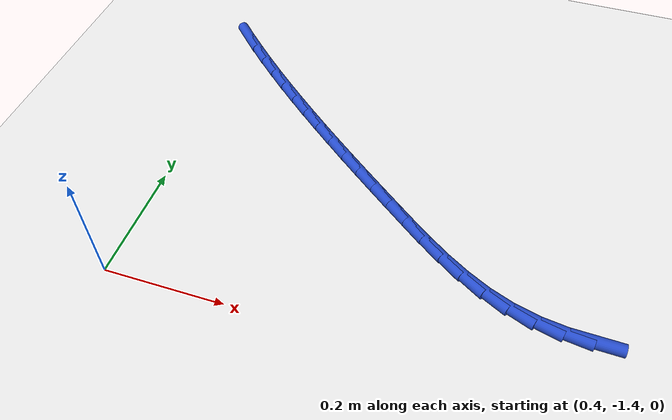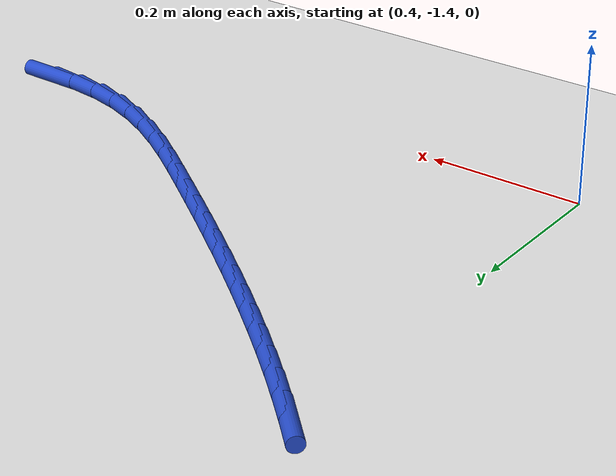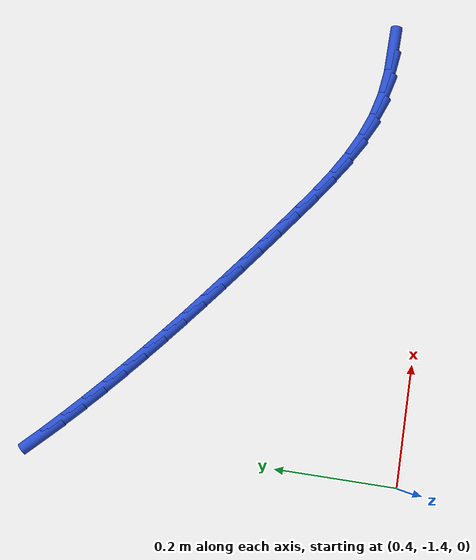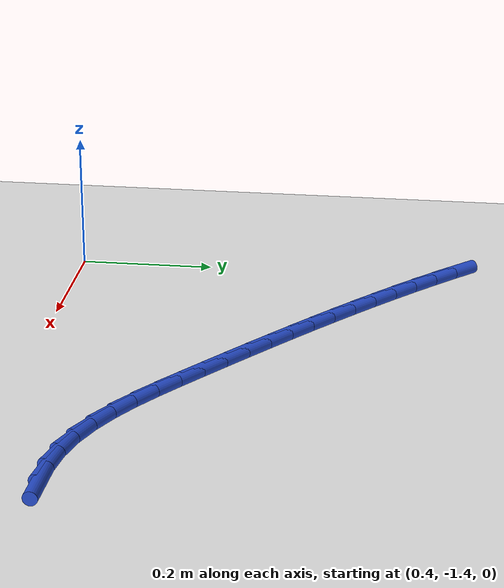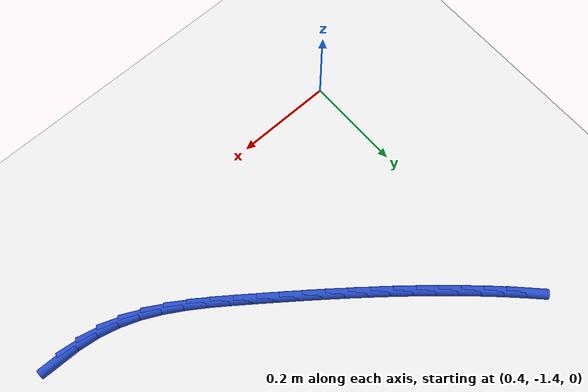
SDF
<sdf version="1.6">
 <world name="default">
  <model name="ground_plane">
   <static>1</static>
   <link name="link">
    <collision name="collision">
     <geometry><plane><normal>0 0 1</normal><size>100 100</size></plane></geometry>
     <surface><friction><ode><mu>100</mu><mu2>50</mu2></ode></friction></surface>
    </collision>
    <visual name="visual">
     <cast_shadows>0</cast_shadows>
     <geometry><plane><normal>0 0 1</normal><size>100 100</size></plane></geometry>
     <material>
      <script><uri>file://media/materials/scripts/gazebo.material</uri><name>Gazebo/WhiteGlow</name></script>
     </material>
    </visual>
   </link>
  </model>
  <model name="line">
   <link name="link_127">
    <pose>1.133701685427752 -1.3003694491781663 0.01 0 1.57 -0.02219049225462379</pose>
    <collision name="collision">
     <geometry><cylinder><radius>0.01</radius><length>0.08</length></cylinder></geometry>
    </collision>
    <visual name="visual">
     <material>
      <script><name>Gazebo/Blue</name><uri>file://media/materials/scripts/gazebo.material</uri></script>
     </material>
     <geometry><cylinder><radius>0.01</radius><length>0.08</length></cylinder></geometry>
    </visual>
   </link>
   <link name="link_128">
    <pose>1.0907762480381145 -1.2994167562127403 0.01 0 1.57 -0.12960647632690914</pose>
    <collision name="collision">
     <geometry><cylinder><radius>0.01</radius><length>0.08</length></cylinder></geometry>
    </collision>
    <visual name="visual">
     <material>
      <script><name>Gazebo/Blue</name><uri>file://media/materials/scripts/gazebo.material</uri></script>
     </material>
     <geometry><cylinder><radius>0.01</radius><length>0.08</length></cylinder></geometry>
    </visual>
   </link>
   <link name="link_129">
    <pose>1.0487683530258602 -1.2939415694745016 0.01 0 1.57 -0.24733539787711606</pose>
    <collision name="collision">
     <geometry><cylinder><radius>0.01</radius><length>0.08</length></cylinder></geometry>
    </collision>
    <visual name="visual">
     <material>
      <script><name>Gazebo/Blue</name><uri>file://media/materials/scripts/gazebo.material</uri></script>
     </material>
     <geometry><cylinder><radius>0.01</radius><length>0.08</length></cylinder></geometry>
    </visual>
   </link>
   <link name="link_130">
    <pose>1.0080943885869016 -1.2836711692784033 0.01 0 1.57 -0.3660981359556514</pose>
    <collision name="collision">
     <geometry><cylinder><radius>0.01</radius><length>0.08</length></cylinder></geometry>
    </collision>
    <visual name="visual">
     <material>
      <script><name>Gazebo/Blue</name><uri>file://media/materials/scripts/gazebo.material</uri></script>
     </material>
     <geometry><cylinder><radius>0.01</radius><length>0.08</length></cylinder></geometry>
    </visual>
   </link>
   <link name="link_131">
    <pose>0.9689717693764125 -1.2686722976624492 0.01 0 1.57 -0.4652130457751415</pose>
    <collision name="collision">
     <geometry><cylinder><radius>0.01</radius><length>0.08</length></cylinder></geometry>
    </collision>
    <visual name="visual">
     <material>
      <script><name>Gazebo/Blue</name><uri>file://media/materials/scripts/gazebo.material</uri></script>
     </material>
     <geometry><cylinder><radius>0.01</radius><length>0.08</length></cylinder></geometry>
    </visual>
   </link>
   <link name="link_132">
    <pose>0.9312055410901604 -1.2497152247667993 0.01 0 1.57 -0.5417029982900289</pose>
    <collision name="collision">
     <geometry><cylinder><radius>0.01</radius><length>0.08</length></cylinder></geometry>
    </collision>
    <visual name="visual">
     <material>
      <script><name>Gazebo/Blue</name><uri>file://media/materials/scripts/gazebo.material</uri></script>
     </material>
     <geometry><cylinder><radius>0.01</radius><length>0.08</length></cylinder></geometry>
    </visual>
   </link>
   <link name="link_133">
    <pose>0.8945495390055934 -1.22765758901574 0.01 0 1.57 -0.5964510829425365</pose>
    <collision name="collision">
     <geometry><cylinder><radius>0.01</radius><length>0.08</length></cylinder></geometry>
    </collision>
    <visual name="visual">
     <material>
      <script><name>Gazebo/Blue</name><uri>file://media/materials/scripts/gazebo.material</uri></script>
     </material>
     <geometry><cylinder><radius>0.01</radius><length>0.08</length></cylinder></geometry>
    </visual>
   </link>
   <link name="link_134">
    <pose>0.8587575984001594 -1.2033570288335547 0.01 0 1.57 -0.6307408397614945</pose>
    <collision name="collision">
     <geometry><cylinder><radius>0.01</radius><length>0.08</length></cylinder></geometry>
    </collision>
    <visual name="visual">
     <material>
      <script><name>Gazebo/Blue</name><uri>file://media/materials/scripts/gazebo.material</uri></script>
     </material>
     <geometry><cylinder><radius>0.01</radius><length>0.08</length></cylinder></geometry>
    </visual>
   </link>
   <link name="link_135">
    <pose>0.8235835545513067 -1.1776711826445294 0.01 0 1.57 -0.6457529034353533</pose>
    <collision name="collision">
     <geometry><cylinder><radius>0.01</radius><length>0.08</length></cylinder></geometry>
    </collision>
    <visual name="visual">
     <material>
      <script><name>Gazebo/Blue</name><uri>file://media/materials/scripts/gazebo.material</uri></script>
     </material>
     <geometry><cylinder><radius>0.01</radius><length>0.08</length></cylinder></geometry>
    </visual>
   </link>
   <link name="link_136">
    <pose>0.7887839169505061 -1.1514488070454785 0.01 0 1.57 -0.6501306078870781</pose>
    <collision name="collision">
     <geometry><cylinder><radius>0.01</radius><length>0.08</length></cylinder></geometry>
    </collision>
    <visual name="visual">
     <material>
      <script><name>Gazebo/Blue</name><uri>file://media/materials/scripts/gazebo.material</uri></script>
     </material>
     <geometry><cylinder><radius>0.01</radius><length>0.08</length></cylinder></geometry>
    </visual>
   </link>
   <link name="link_137">
    <pose>0.754226009807833 -1.1251706113478563 0.01 0 1.57 -0.6549585956526618</pose>
    <collision name="collision">
     <geometry><cylinder><radius>0.01</radius><length>0.08</length></cylinder></geometry>
    </collision>
    <visual name="visual">
     <material>
      <script><name>Gazebo/Blue</name><uri>file://media/materials/scripts/gazebo.material</uri></script>
     </material>
     <geometry><cylinder><radius>0.01</radius><length>0.08</length></cylinder></geometry>
    </visual>
   </link>
   <link name="link_138">
    <pose>0.7199252056089213 -1.0988255943159062 0.01 0 1.57 -0.6610185000822406</pose>
    <collision name="collision">
     <geometry><cylinder><radius>0.01</radius><length>0.08</length></cylinder></geometry>
    </collision>
    <visual name="visual">
     <material>
      <script><name>Gazebo/Blue</name><uri>file://media/materials/scripts/gazebo.material</uri></script>
     </material>
     <geometry><cylinder><radius>0.01</radius><length>0.08</length></cylinder></geometry>
    </visual>
   </link>
   <link name="link_139">
    <pose>0.6859071942021322 -1.072368487809699 0.01 0 1.57 -0.6683200881139758</pose>
    <collision name="collision">
     <geometry><cylinder><radius>0.01</radius><length>0.08</length></cylinder></geometry>
    </collision>
    <visual name="visual">
     <material>
      <script><name>Gazebo/Blue</name><uri>file://media/materials/scripts/gazebo.material</uri></script>
     </material>
     <geometry><cylinder><radius>0.01</radius><length>0.08</length></cylinder></geometry>
    </visual>
   </link>
   <link name="link_140">
    <pose>0.6521976654358261 -1.0457540236893064 0.01 0 1.57 -0.6768712859432999</pose>
    <collision name="collision">
     <geometry><cylinder><radius>0.01</radius><length>0.08</length></cylinder></geometry>
    </collision>
    <visual name="visual">
     <material>
      <script><name>Gazebo/Blue</name><uri>file://media/materials/scripts/gazebo.material</uri></script>
     </material>
     <geometry><cylinder><radius>0.01</radius><length>0.08</length></cylinder></geometry>
    </visual>
   </link>
   <link name="link_141">
    <pose>0.6188223091583639 -1.0189369338147987 0.01 0 1.57 -0.6866777940631841</pose>
    <collision name="collision">
     <geometry><cylinder><radius>0.01</radius><length>0.08</length></cylinder></geometry>
    </collision>
    <visual name="visual">
     <material>
      <script><name>Gazebo/Blue</name><uri>file://media/materials/scripts/gazebo.material</uri></script>
     </material>
     <geometry><cylinder><radius>0.01</radius><length>0.08</length></cylinder></geometry>
    </visual>
   </link>
   <link name="link_142">
    <pose>0.5858068152181057 -0.991871950046248 0.01 0 1.57 -0.6977426418796123</pose>
    <collision name="collision">
     <geometry><cylinder><radius>0.01</radius><length>0.08</length></cylinder></geometry>
    </collision>
    <visual name="visual">
     <material>
      <script><name>Gazebo/Blue</name><uri>file://media/materials/scripts/gazebo.material</uri></script>
     </material>
     <geometry><cylinder><radius>0.01</radius><length>0.08</length></cylinder></geometry>
    </visual>
   </link>
   <link name="link_143">
    <pose>0.5531768734634132 -0.964513804243725 0.01 0 1.57 -0.710065685498652</pose>
    <collision name="collision">
     <geometry><cylinder><radius>0.01</radius><length>0.08</length></cylinder></geometry>
    </collision>
    <visual name="visual">
     <material>
      <script><name>Gazebo/Blue</name><uri>file://media/materials/scripts/gazebo.material</uri></script>
     </material>
     <geometry><cylinder><radius>0.01</radius><length>0.08</length></cylinder></geometry>
    </visual>
   </link>
   <link name="link_144">
    <pose>0.5209581737426464 -0.9368172282673013 0.01 0 1.57 -0.7236430550493086</pose>
    <collision name="collision">
     <geometry><cylinder><radius>0.01</radius><length>0.08</length></cylinder></geometry>
    </collision>
    <visual name="visual">
     <material>
      <script><name>Gazebo/Blue</name><uri>file://media/materials/scripts/gazebo.material</uri></script>
     </material>
     <geometry><cylinder><radius>0.01</radius><length>0.08</length></cylinder></geometry>
    </visual>
   </link>
   <link name="link_145">
    <pose>0.4891764059041663 -0.9087369539770477 0.01 0 1.57 -0.7384665612064513</pose>
    <collision name="collision">
     <geometry><cylinder><radius>0.01</radius><length>0.08</length></cylinder></geometry>
    </collision>
    <visual name="visual">
     <material>
      <script><name>Gazebo/Blue</name><uri>file://media/materials/scripts/gazebo.material</uri></script>
     </material>
     <geometry><cylinder><radius>0.01</radius><length>0.08</length></cylinder></geometry>
    </visual>
   </link>
   <link name="link_146">
    <pose>0.45785725979633357 -0.8802277132330357 0.01 0 1.57 -0.7545230743669554</pose>
    <collision name="collision">
     <geometry><cylinder><radius>0.01</radius><length>0.08</length></cylinder></geometry>
    </collision>
    <visual name="visual">
     <material>
      <script><name>Gazebo/Blue</name><uri>file://media/materials/scripts/gazebo.material</uri></script>
     </material>
     <geometry><cylinder><radius>0.01</radius><length>0.08</length></cylinder></geometry>
    </visual>
   </link>
   <link name="link_147">
    <pose>0.427026425267508 -0.8512442378953354 0.01 0 1.57 -0.7717938940896274</pose>
    <collision name="collision">
     <geometry><cylinder><radius>0.01</radius><length>0.08</length></cylinder></geometry>
    </collision>
    <visual name="visual">
     <material>
      <script><name>Gazebo/Blue</name><uri>file://media/materials/scripts/gazebo.material</uri></script>
     </material>
     <geometry><cylinder><radius>0.01</radius><length>0.08</length></cylinder></geometry>
    </visual>
   </link>
   <link name="link_148">
    <pose>0.39670959216605184 -0.8217412598240196 0.01 0 1.57 -0.7902541307352792</pose>
    <collision name="collision">
     <geometry><cylinder><radius>0.01</radius><length>0.08</length></cylinder></geometry>
    </collision>
    <visual name="visual">
     <material>
      <script><name>Gazebo/Blue</name><uri>file://media/materials/scripts/gazebo.material</uri></script>
     </material>
     <geometry><cylinder><radius>0.01</radius><length>0.08</length></cylinder></geometry>
    </visual>
   </link>
  </model>
 </world>
</sdf>
